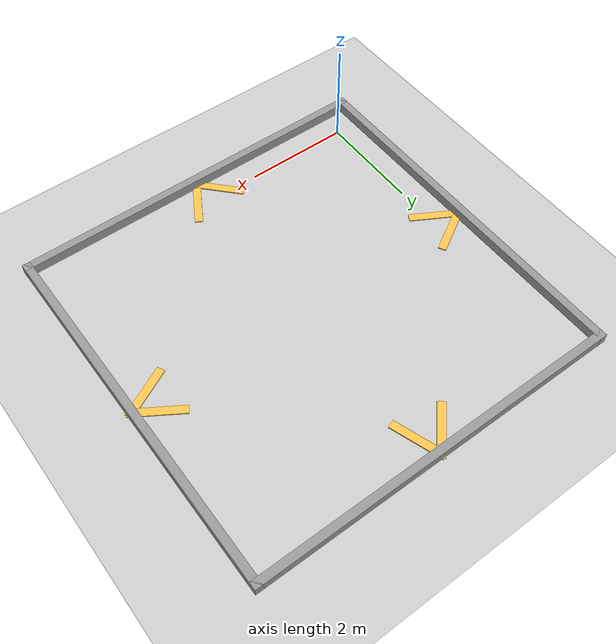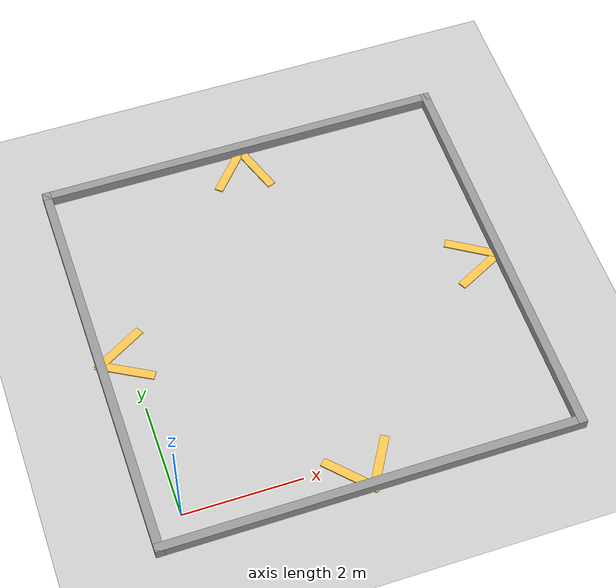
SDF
<sdf version="1.4">
  <world name="default">

    <scene>
      <ambient>0.4 0.4 0.4 1</ambient>
      <background>0.7 0.7 0.7 1</background>
      <shadows>true</shadows>
    </scene>

    <!-- A global light source -->
    <include>
      <uri>model://sun</uri>
    </include>

    <!-- A ground plane -->
    <include>
      <uri>model://ground_plane</uri>
    </include>

    <physics type="ode">
      <real_time_update_rate>1000.0</real_time_update_rate>
      <max_step_size>0.001</max_step_size>
      <real_time_factor>1</real_time_factor>
      <ode>
        <solver>
          <type>quick</type>
          <iters>150</iters>
          <precon_iters>0</precon_iters>
          <sor>1.400000</sor>
          <use_dynamic_moi_rescaling>1</use_dynamic_moi_rescaling>
        </solver>
        <constraints>
          <cfm>0.00001</cfm>
          <erp>0.2</erp>
          <contact_max_correcting_vel>2000.000000</contact_max_correcting_vel>
          <contact_surface_layer>0.01000</contact_surface_layer>
        </constraints>
      </ode>
    </physics>
    <!-- A turtlebot symbol -->
    <include>
      <uri>model://Pipeless_Plant</uri>
    </include>

  </world>

</sdf>

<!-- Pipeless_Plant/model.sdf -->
<sdf version='1.6'>
  <model name='Pipeless_Plant_'>
    <pose frame=''>3.0005 2.99998 0 0 -0 0</pose>
    <link name='Wall_0'>
      <collision name='Wall_0_Collision'>
        <geometry>
          <box>
            <size>7.15 0.15 0.2</size>
          </box>
        </geometry>
        <pose frame=''>0 0 0.1 0 -0 0</pose>
      </collision>
      <visual name='Wall_0_Visual'>
        <pose frame=''>0 0 0.1 0 -0 0</pose>
        <geometry>
          <box>
            <size>7.15 0.15 0.2</size>
          </box>
        </geometry>
        <material>
          <script>
            <uri>file://media/materials/scripts/gazebo.material</uri>
            <name>Gazebo/Grey</name>
          </script>
          <ambient>1 1 1 1</ambient>
        </material>
        <meta>
          <layer>0</layer>
        </meta>
      </visual>
      <pose frame=''>-0.000498 3.50002 0 0 -0 0</pose>
    </link>
    <link name='Wall_1'>
      <collision name='Wall_1_Collision'>
        <geometry>
          <box>
            <size>7.15 0.15 0.2</size>
          </box>
        </geometry>
        <pose frame=''>0 0 0.1 0 -0 0</pose>
      </collision>
      <visual name='Wall_1_Visual'>
        <pose frame=''>0 0 0.1 0 -0 0</pose>
        <geometry>
          <box>
            <size>7.15 0.15 0.2</size>
          </box>
        </geometry>
        <material>
          <script>
            <uri>file://media/materials/scripts/gazebo.material</uri>
            <name>Gazebo/Grey</name>
          </script>
          <ambient>1 1 1 1</ambient>
        </material>
        <meta>
          <layer>0</layer>
        </meta>
      </visual>
      <pose frame=''>3.4995 2.2e-05 0 0 -0 -1.5708</pose>
    </link>
    <link name='Wall_13'>
      <collision name='Wall_13_Collision'>
        <geometry>
          <box>
            <size>1 0.15 0.025</size>
          </box>
        </geometry>
        <pose frame=''>0 0 0.0125 0 -0 0</pose>
      </collision>
      <visual name='Wall_13_Visual'>
        <pose frame=''>0 0 0.0125 0 -0 0</pose>
        <geometry>
          <box>
            <size>1 0.15 0.025</size>
          </box>
        </geometry>
        <material>
          <script>
            <uri>file://media/materials/scripts/gazebo.material</uri>
            <name>Gazebo/Grey</name>
          </script>
          <ambient>1 0.764706 0.305882 1</ambient>
        </material>
        <meta>
          <layer>0</layer>
        </meta>
      </visual>
      <pose frame=''>-0.281998 3.18152 0 0 -0 -2.29461</pose>
    </link>
    <link name='Wall_16'>
      <collision name='Wall_16_Collision'>
        <geometry>
          <box>
            <size>1 0.15 0.025</size>
          </box>
        </geometry>
        <pose frame=''>0 0 0.0125 0 -0 0</pose>
      </collision>
      <visual name='Wall_16_Visual'>
        <pose frame=''>0 0 0.0125 0 -0 0</pose>
        <geometry>
          <box>
            <size>1 0.15 0.025</size>
          </box>
        </geometry>
        <material>
          <script>
            <uri>file://media/materials/scripts/gazebo.material</uri>
            <name>Gazebo/Grey</name>
          </script>
          <ambient>1 0.764706 0.305882 1</ambient>
        </material>
        <meta>
          <layer>0</layer>
        </meta>
      </visual>
      <pose frame=''>0.138502 3.09852 0 0 -0 -1.23751</pose>
    </link>
    <link name='Wall_18'>
      <collision name='Wall_18_Collision'>
        <geometry>
          <box>
            <size>1.00003 0.15 0.025</size>
          </box>
        </geometry>
        <pose frame=''>0 0 0.0125 0 -0 0</pose>
      </collision>
      <visual name='Wall_18_Visual'>
        <pose frame=''>0 0 0.0125 0 -0 0</pose>
        <geometry>
          <box>
            <size>1.00003 0.15 0.025</size>
          </box>
        </geometry>
        <material>
          <script>
            <uri>file://media/materials/scripts/gazebo.material</uri>
            <name>Gazebo/Grey</name>
          </script>
          <ambient>1 0.764706 0.305882 1</ambient>
        </material>
        <meta>
          <layer>0</layer>
        </meta>
      </visual>
      <pose frame=''>3.1405 0.227522 0 0 -0 2.57676</pose>
    </link>
    <link name='Wall_2'>
      <collision name='Wall_2_Collision'>
        <geometry>
          <box>
            <size>7.15 0.15 0.2</size>
          </box>
        </geometry>
        <pose frame=''>0 0 0.1 0 -0 0</pose>
      </collision>
      <visual name='Wall_2_Visual'>
        <pose frame=''>0 0 0.1 0 -0 0</pose>
        <geometry>
          <box>
            <size>7.15 0.15 0.2</size>
          </box>
        </geometry>
        <material>
          <script>
            <uri>file://media/materials/scripts/gazebo.material</uri>
            <name>Gazebo/Grey</name>
          </script>
          <ambient>1 1 1 1</ambient>
        </material>
        <meta>
          <layer>0</layer>
        </meta>
      </visual>
      <pose frame=''>-0.000498 -3.49998 0 0 -0 3.14159</pose>
    </link>
    <link name='Wall_20'>
      <collision name='Wall_20_Collision'>
        <geometry>
          <box>
            <size>0.993035 0.15 0.025</size>
          </box>
        </geometry>
        <pose frame=''>0 0 0.0125 0 -0 0</pose>
      </collision>
      <visual name='Wall_20_Visual'>
        <pose frame=''>0 0 0.0125 0 -0 0</pose>
        <geometry>
          <box>
            <size>0.993035 0.15 0.025</size>
          </box>
        </geometry>
        <material>
          <script>
            <uri>file://media/materials/scripts/gazebo.material</uri>
            <name>Gazebo/Grey</name>
          </script>
          <ambient>1 0.764706 0.305882 1</ambient>
        </material>
        <meta>
          <layer>0</layer>
        </meta>
      </visual>
      <pose frame=''>3.1235 -0.189978 0 0 -0 -2.6737</pose>
    </link>
    <link name='Wall_22'>
      <collision name='Wall_22_Collision'>
        <geometry>
          <box>
            <size>1 0.15 0.025</size>
          </box>
        </geometry>
        <pose frame=''>0 0 0.0125 0 -0 0</pose>
      </collision>
      <visual name='Wall_22_Visual'>
        <pose frame=''>0 0 0.0125 0 -0 0</pose>
        <geometry>
          <box>
            <size>1 0.15 0.025</size>
          </box>
        </geometry>
        <material>
          <script>
            <uri>file://media/materials/scripts/gazebo.material</uri>
            <name>Gazebo/Grey</name>
          </script>
          <ambient>1 0.764706 0.305882 1</ambient>
        </material>
        <meta>
          <layer>0</layer>
        </meta>
      </visual>
      <pose frame=''>-0.290998 -3.18948 0 0 -0 2.32293</pose>
    </link>
    <link name='Wall_24'>
      <collision name='Wall_24_Collision'>
        <geometry>
          <box>
            <size>1 0.15 0.025</size>
          </box>
        </geometry>
        <pose frame=''>0 0 0.0125 0 -0 0</pose>
      </collision>
      <visual name='Wall_24_Visual'>
        <pose frame=''>0 0 0.0125 0 -0 0</pose>
        <geometry>
          <box>
            <size>1 0.15 0.025</size>
          </box>
        </geometry>
        <material>
          <script>
            <uri>file://media/materials/scripts/gazebo.material</uri>
            <name>Gazebo/Grey</name>
          </script>
          <ambient>1 0.764706 0.305882 1</ambient>
        </material>
        <meta>
          <layer>0</layer>
        </meta>
      </visual>
      <pose frame=''>0.212002 -3.13198 0 0 -0 1.04713</pose>
    </link>
    <link name='Wall_3'>
      <collision name='Wall_3_Collision'>
        <geometry>
          <box>
            <size>7.15 0.15 0.2</size>
          </box>
        </geometry>
        <pose frame=''>0 0 0.1 0 -0 0</pose>
      </collision>
      <visual name='Wall_3_Visual'>
        <pose frame=''>0 0 0.1 0 -0 0</pose>
        <geometry>
          <box>
            <size>7.15 0.15 0.2</size>
          </box>
        </geometry>
        <material>
          <script>
            <uri>file://media/materials/scripts/gazebo.material</uri>
            <name>Gazebo/Grey</name>
          </script>
          <ambient>1 1 1 1</ambient>
        </material>
        <meta>
          <layer>0</layer>
        </meta>
      </visual>
      <pose frame=''>-3.5005 2.2e-05 0 0 -0 1.5708</pose>
    </link>
    <link name='Wall_7'>
      <collision name='Wall_7_Collision'>
        <geometry>
          <box>
            <size>1.00001 0.15 0.025</size>
          </box>
        </geometry>
        <pose frame=''>0 0 0.0125 0 -0 0</pose>
      </collision>
      <visual name='Wall_7_Visual'>
        <pose frame=''>0 0 0.0125 0 -0 0</pose>
        <geometry>
          <box>
            <size>1.00001 0.15 0.025</size>
          </box>
        </geometry>
        <material>
          <script>
            <uri>file://media/materials/scripts/gazebo.material</uri>
            <name>Gazebo/Grey</name>
          </script>
          <ambient>1 0.764706 0.305882 1</ambient>
        </material>
        <meta>
          <layer>0</layer>
        </meta>
      </visual>
      <pose frame=''>-3.131 -0.209978 0 0 -0 -0.516811</pose>
    </link>
    <link name='Wall_9'>
      <collision name='Wall_9_Collision'>
        <geometry>
          <box>
            <size>1 0.15 0.025</size>
          </box>
        </geometry>
        <pose frame=''>0 0 0.0125 0 -0 0</pose>
      </collision>
      <visual name='Wall_9_Visual'>
        <pose frame=''>0 0 0.0125 0 -0 0</pose>
        <geometry>
          <box>
            <size>1 0.15 0.025</size>
          </box>
        </geometry>
        <material>
          <script>
            <uri>file://media/materials/scripts/gazebo.material</uri>
            <name>Gazebo/Grey</name>
          </script>
          <ambient>1 0.764706 0.305882 1</ambient>
        </material>
        <meta>
          <layer>0</layer>
        </meta>
      </visual>
      <pose frame=''>-3.1325 0.212522 0 0 -0 0.52367</pose>
    </link>
    <static>1</static>
  </model>
</sdf>
